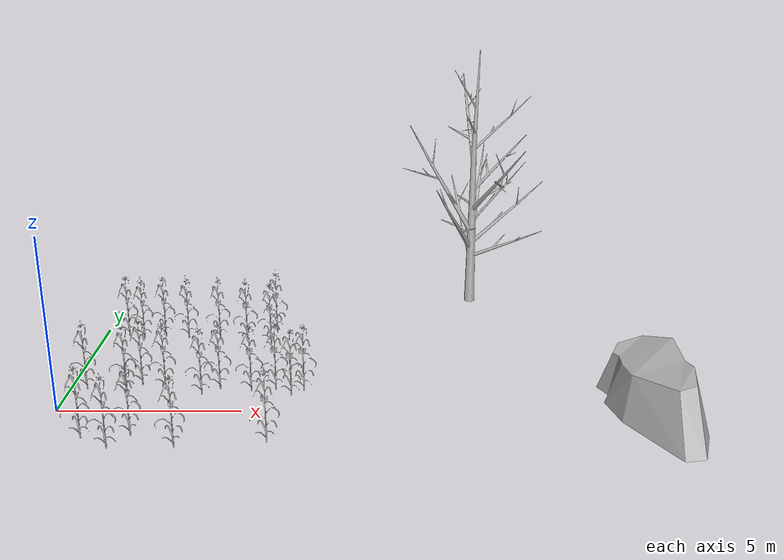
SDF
<sdf version="1.6">
 <world name="default">
  <model name="corn_stalk2_clone_29">
   <static>1</static>
   <link name="corn_stalk2_link">
    <collision name="collision">
     <geometry><mesh><scale>1 1 1</scale><uri>model://corn_type2/meshes/model.stl</uri></mesh></geometry>
    </collision>
    <visual name="corn_stalk2_visual">
     <geometry><mesh><uri>model://corn_type2/meshes/model.stl</uri><scale>1 1 1</scale></mesh></geometry>
     <material>
      <script>
       <uri>model://corn_type2/materials/scripts</uri>
       <uri>model://corn_type2/materials/textures</uri>
       <name>corn_type2/Diffuse</name>
      </script>
     </material>
    </visual>
   </link>
   <pose>1.88138 -1.77757 0 0 -0 0</pose>
  </model>
  <model name="corn_stalk2_clone_43">
   <static>1</static>
   <link name="corn_stalk2_link">
    <collision name="collision">
     <geometry><mesh><scale>1 1 1</scale><uri>model://corn_type2/meshes/model.stl</uri></mesh></geometry>
    </collision>
    <visual name="corn_stalk2_visual">
     <geometry><mesh><uri>model://corn_type2/meshes/model.stl</uri><scale>1 1 1</scale></mesh></geometry>
     <material>
      <script>
       <uri>model://corn_type2/materials/scripts</uri>
       <uri>model://corn_type2/materials/textures</uri>
       <name>corn_type2/Diffuse</name>
      </script>
     </material>
    </visual>
   </link>
   <pose>0.456007 1.19719 0 0 -0 0</pose>
  </model>
  <model name="corn_stalk2_clone_44">
   <static>1</static>
   <link name="corn_stalk2_link">
    <collision name="collision">
     <geometry><mesh><scale>1 1 1</scale><uri>model://corn_type2/meshes/model.stl</uri></mesh></geometry>
    </collision>
    <visual name="corn_stalk2_visual">
     <geometry><mesh><uri>model://corn_type2/meshes/model.stl</uri><scale>1 1 1</scale></mesh></geometry>
     <material>
      <script>
       <uri>model://corn_type2/materials/scripts</uri>
       <uri>model://corn_type2/materials/textures</uri>
       <name>corn_type2/Diffuse</name>
      </script>
     </material>
    </visual>
   </link>
   <pose>1.60118 1.09896 0 0 -0 0</pose>
  </model>
  <model name="corn_stalk2_clone_45">
   <static>1</static>
   <link name="corn_stalk2_link">
    <collision name="collision">
     <geometry><mesh><scale>1 1 1</scale><uri>model://corn_type2/meshes/model.stl</uri></mesh></geometry>
    </collision>
    <visual name="corn_stalk2_visual">
     <geometry><mesh><uri>model://corn_type2/meshes/model.stl</uri><scale>1 1 1</scale></mesh></geometry>
     <material>
      <script>
       <uri>model://corn_type2/materials/scripts</uri>
       <uri>model://corn_type2/materials/textures</uri>
       <name>corn_type2/Diffuse</name>
      </script>
     </material>
    </visual>
   </link>
   <pose>2.67417 1.23244 0 0 -0 0</pose>
  </model>
  <model name="corn_stalk2_clone_46">
   <static>1</static>
   <link name="corn_stalk2_link">
    <collision name="collision">
     <geometry><mesh><scale>1 1 1</scale><uri>model://corn_type2/meshes/model.stl</uri></mesh></geometry>
    </collision>
    <visual name="corn_stalk2_visual">
     <geometry><mesh><uri>model://corn_type2/meshes/model.stl</uri><scale>1 1 1</scale></mesh></geometry>
     <material>
      <script>
       <uri>model://corn_type2/materials/scripts</uri>
       <uri>model://corn_type2/materials/textures</uri>
       <name>corn_type2/Diffuse</name>
      </script>
     </material>
    </visual>
   </link>
   <pose>3.75689 0.914168 0 0 -0 0</pose>
  </model>
  <model name="corn_stalk2_clone_47">
   <static>1</static>
   <link name="corn_stalk2_link">
    <collision name="collision">
     <geometry><mesh><scale>1 1 1</scale><uri>model://corn_type2/meshes/model.stl</uri></mesh></geometry>
    </collision>
    <visual name="corn_stalk2_visual">
     <geometry><mesh><uri>model://corn_type2/meshes/model.stl</uri><scale>1 1 1</scale></mesh></geometry>
     <material>
      <script>
       <uri>model://corn_type2/materials/scripts</uri>
       <uri>model://corn_type2/materials/textures</uri>
       <name>corn_type2/Diffuse</name>
      </script>
     </material>
    </visual>
   </link>
   <pose>4.22166 1.24005 0 0 -0 0</pose>
  </model>
  <model name="corn_stalk2_clone_48">
   <static>1</static>
   <link name="corn_stalk2_link">
    <collision name="collision">
     <geometry><mesh><scale>1 1 1</scale><uri>model://corn_type2/meshes/model.stl</uri></mesh></geometry>
    </collision>
    <visual name="corn_stalk2_visual">
     <geometry><mesh><uri>model://corn_type2/meshes/model.stl</uri><scale>1 1 1</scale></mesh></geometry>
     <material>
      <script>
       <uri>model://corn_type2/materials/scripts</uri>
       <uri>model://corn_type2/materials/textures</uri>
       <name>corn_type2/Diffuse</name>
      </script>
     </material>
    </visual>
   </link>
   <pose>5.12082 1.11099 0 0 -0 0</pose>
  </model>
  <model name="corn_stalk2_clone_49">
   <static>1</static>
   <link name="corn_stalk2_link">
    <collision name="collision">
     <geometry><mesh><scale>1 1 1</scale><uri>model://corn_type2/meshes/model.stl</uri></mesh></geometry>
    </collision>
    <visual name="corn_stalk2_visual">
     <geometry><mesh><uri>model://corn_type2/meshes/model.stl</uri><scale>1 1 1</scale></mesh></geometry>
     <material>
      <script>
       <uri>model://corn_type2/materials/scripts</uri>
       <uri>model://corn_type2/materials/textures</uri>
       <name>corn_type2/Diffuse</name>
      </script>
     </material>
    </visual>
   </link>
   <pose>5.80337 1.20954 0 0 -0 0</pose>
  </model>
  <model name="corn_stalk2_clone_50">
   <static>1</static>
   <link name="corn_stalk2_link">
    <collision name="collision">
     <geometry><mesh><scale>1 1 1</scale><uri>model://corn_type2/meshes/model.stl</uri></mesh></geometry>
    </collision>
    <visual name="corn_stalk2_visual">
     <geometry><mesh><uri>model://corn_type2/meshes/model.stl</uri><scale>1 1 1</scale></mesh></geometry>
     <material>
      <script>
       <uri>model://corn_type2/materials/scripts</uri>
       <uri>model://corn_type2/materials/textures</uri>
       <name>corn_type2/Diffuse</name>
      </script>
     </material>
    </visual>
   </link>
   <pose>5.31763 4.10486 0 0 -0 0</pose>
  </model>
  <model name="corn_stalk2_clone_51">
   <static>1</static>
   <link name="corn_stalk2_link">
    <collision name="collision">
     <geometry><mesh><scale>1 1 1</scale><uri>model://corn_type2/meshes/model.stl</uri></mesh></geometry>
    </collision>
    <visual name="corn_stalk2_visual">
     <geometry><mesh><uri>model://corn_type2/meshes/model.stl</uri><scale>1 1 1</scale></mesh></geometry>
     <material>
      <script>
       <uri>model://corn_type2/materials/scripts</uri>
       <uri>model://corn_type2/materials/textures</uri>
       <name>corn_type2/Diffuse</name>
      </script>
     </material>
    </visual>
   </link>
   <pose>4.54413 4.29558 0 0 -0 0</pose>
  </model>
  <model name="corn_stalk2_clone_52">
   <static>1</static>
   <link name="corn_stalk2_link">
    <collision name="collision">
     <geometry><mesh><scale>1 1 1</scale><uri>model://corn_type2/meshes/model.stl</uri></mesh></geometry>
    </collision>
    <visual name="corn_stalk2_visual">
     <geometry><mesh><uri>model://corn_type2/meshes/model.stl</uri><scale>1 1 1</scale></mesh></geometry>
     <material>
      <script>
       <uri>model://corn_type2/materials/scripts</uri>
       <uri>model://corn_type2/materials/textures</uri>
       <name>corn_type2/Diffuse</name>
      </script>
     </material>
    </visual>
   </link>
   <pose>3.66093 4.44418 0 0 -0 0</pose>
  </model>
  <model name="corn_stalk2_clone_53">
   <static>1</static>
   <link name="corn_stalk2_link">
    <collision name="collision">
     <geometry><mesh><scale>1 1 1</scale><uri>model://corn_type2/meshes/model.stl</uri></mesh></geometry>
    </collision>
    <visual name="corn_stalk2_visual">
     <geometry><mesh><uri>model://corn_type2/meshes/model.stl</uri><scale>1 1 1</scale></mesh></geometry>
     <material>
      <script>
       <uri>model://corn_type2/materials/scripts</uri>
       <uri>model://corn_type2/materials/textures</uri>
       <name>corn_type2/Diffuse</name>
      </script>
     </material>
    </visual>
   </link>
   <pose>2.65247 4.50274 0 0 -0 0</pose>
  </model>
  <model name="corn_stalk2_clone_54">
   <static>1</static>
   <link name="corn_stalk2_link">
    <collision name="collision">
     <geometry><mesh><scale>1 1 1</scale><uri>model://corn_type2/meshes/model.stl</uri></mesh></geometry>
    </collision>
    <visual name="corn_stalk2_visual">
     <geometry><mesh><uri>model://corn_type2/meshes/model.stl</uri><scale>1 1 1</scale></mesh></geometry>
     <material>
      <script>
       <uri>model://corn_type2/materials/scripts</uri>
       <uri>model://corn_type2/materials/textures</uri>
       <name>corn_type2/Diffuse</name>
      </script>
     </material>
    </visual>
   </link>
   <pose>1.90074 4.57523 0 0 -0 0</pose>
  </model>
  <model name="corn_stalk2_clone_55">
   <static>1</static>
   <link name="corn_stalk2_link">
    <collision name="collision">
     <geometry><mesh><scale>1 1 1</scale><uri>model://corn_type2/meshes/model.stl</uri></mesh></geometry>
    </collision>
    <visual name="corn_stalk2_visual">
     <geometry><mesh><uri>model://corn_type2/meshes/model.stl</uri><scale>1 1 1</scale></mesh></geometry>
     <material>
      <script>
       <uri>model://corn_type2/materials/scripts</uri>
       <uri>model://corn_type2/materials/textures</uri>
       <name>corn_type2/Diffuse</name>
      </script>
     </material>
    </visual>
   </link>
   <pose>0.723936 4.62767 0 0 -0 0</pose>
  </model>
  <model name="tree_type3_1">
   <static>1</static>
   <link name="link">
    <collision name="collision"><geometry><box><size>0.3 0.3 10</size></box></geometry></collision>
    <visual name="corn_stalk4_visual">
     <geometry><mesh><uri>model://tree_type3/meshes/model.stl</uri><scale>1 1 1</scale></mesh></geometry>
     <material>
      <script>
       <uri>model://tree_type3/materials/scripts</uri>
       <uri>model://tree_type3/materials/textures</uri>
       <name>tree_type3/Diffuse</name>
      </script>
     </material>
    </visual>
   </link>
   <pose>11.8736 7.54169 0 0 -0 0</pose>
  </model>
  <model name="rock_type1_0">
   <static>1</static>
   <link name="link">
    <collision name="collision">
     <geometry><mesh><uri>model://rock_type1/meshes/model.dae</uri></mesh></geometry>
    </collision>
    <visual name="visual">
     <geometry><mesh><uri>model://rock_type1/meshes/model.dae</uri></mesh></geometry>
    </visual>
   </link>
   <pose>14.2338 1.44343 0 0 0 -1.11785</pose>
  </model>
  <model name="corn_stalk2_0_clone_5">
   <static>1</static>
   <link name="corn_stalk2_link">
    <collision name="collision">
     <geometry><mesh><scale>1 1 1</scale><uri>model://corn_type2/meshes/model.stl</uri></mesh></geometry>
    </collision>
    <visual name="corn_stalk2_visual">
     <geometry><mesh><uri>model://corn_type2/meshes/model.stl</uri><scale>1 1 1</scale></mesh></geometry>
     <material>
      <script>
       <uri>model://corn_type2/materials/scripts</uri>
       <uri>model://corn_type2/materials/textures</uri>
       <name>corn_type2/Diffuse</name>
      </script>
     </material>
    </visual>
   </link>
   <pose>1.96531 1.44545 0 0 -0 0</pose>
  </model>
  <model name="corn_stalk2_0_clone_6">
   <static>1</static>
   <link name="corn_stalk2_link">
    <collision name="collision">
     <geometry><mesh><scale>1 1 1</scale><uri>model://corn_type2/meshes/model.stl</uri></mesh></geometry>
    </collision>
    <visual name="corn_stalk2_visual">
     <geometry><mesh><uri>model://corn_type2/meshes/model.stl</uri><scale>1 1 1</scale></mesh></geometry>
     <material>
      <script>
       <uri>model://corn_type2/materials/scripts</uri>
       <uri>model://corn_type2/materials/textures</uri>
       <name>corn_type2/Diffuse</name>
      </script>
     </material>
    </visual>
   </link>
   <pose>6.60445 1.15174 0 0 -0 0</pose>
  </model>
  <model name="corn_stalk2_0_clone_7">
   <static>1</static>
   <link name="corn_stalk2_link">
    <collision name="collision">
     <geometry><mesh><scale>1 1 1</scale><uri>model://corn_type2/meshes/model.stl</uri></mesh></geometry>
    </collision>
    <visual name="corn_stalk2_visual">
     <geometry><mesh><uri>model://corn_type2/meshes/model.stl</uri><scale>1 1 1</scale></mesh></geometry>
     <material>
      <script>
       <uri>model://corn_type2/materials/scripts</uri>
       <uri>model://corn_type2/materials/textures</uri>
       <name>corn_type2/Diffuse</name>
      </script>
     </material>
    </visual>
   </link>
   <pose>5.87408 -1.4831 0 0 -0 0</pose>
  </model>
  <model name="corn_stalk2_0_clone_8">
   <static>1</static>
   <link name="corn_stalk2_link">
    <collision name="collision">
     <geometry><mesh><scale>1 1 1</scale><uri>model://corn_type2/meshes/model.stl</uri></mesh></geometry>
    </collision>
    <visual name="corn_stalk2_visual">
     <geometry><mesh><uri>model://corn_type2/meshes/model.stl</uri><scale>1 1 1</scale></mesh></geometry>
     <material>
      <script>
       <uri>model://corn_type2/materials/scripts</uri>
       <uri>model://corn_type2/materials/textures</uri>
       <name>corn_type2/Diffuse</name>
      </script>
     </material>
    </visual>
   </link>
   <pose>3.56933 -1.74234 0 0 -0 0</pose>
  </model>
  <model name="corn_stalk2_0_clone_9">
   <static>1</static>
   <link name="corn_stalk2_link">
    <collision name="collision">
     <geometry><mesh><scale>1 1 1</scale><uri>model://corn_type2/meshes/model.stl</uri></mesh></geometry>
    </collision>
    <visual name="corn_stalk2_visual">
     <geometry><mesh><uri>model://corn_type2/meshes/model.stl</uri><scale>1 1 1</scale></mesh></geometry>
     <material>
      <script>
       <uri>model://corn_type2/materials/scripts</uri>
       <uri>model://corn_type2/materials/textures</uri>
       <name>corn_type2/Diffuse</name>
      </script>
     </material>
    </visual>
   </link>
   <pose>2.33429 -1.20562 0 0 -0 0</pose>
  </model>
  <model name="corn_stalk2_0_clone_10">
   <static>1</static>
   <link name="corn_stalk2_link">
    <collision name="collision">
     <geometry><mesh><scale>1 1 1</scale><uri>model://corn_type2/meshes/model.stl</uri></mesh></geometry>
    </collision>
    <visual name="corn_stalk2_visual">
     <geometry><mesh><uri>model://corn_type2/meshes/model.stl</uri><scale>1 1 1</scale></mesh></geometry>
     <material>
      <script>
       <uri>model://corn_type2/materials/scripts</uri>
       <uri>model://corn_type2/materials/textures</uri>
       <name>corn_type2/Diffuse</name>
      </script>
     </material>
    </visual>
   </link>
   <pose>1.07911 -1.31527 0 0 -0 0</pose>
  </model>
  <model name="corn_stalk2_0_clone_19">
   <static>1</static>
   <link name="corn_stalk2_link">
    <collision name="collision">
     <geometry><mesh><scale>1 1 1</scale><uri>model://corn_type2/meshes/model.stl</uri></mesh></geometry>
    </collision>
    <visual name="corn_stalk2_visual">
     <geometry><mesh><uri>model://corn_type2/meshes/model.stl</uri><scale>1 1 1</scale></mesh></geometry>
     <material>
      <script>
       <uri>model://corn_type2/materials/scripts</uri>
       <uri>model://corn_type2/materials/textures</uri>
       <name>corn_type2/Diffuse</name>
      </script>
     </material>
    </visual>
   </link>
   <pose>1.25885 4.40624 0 0 -0 0</pose>
  </model>
  <model name="corn_stalk2_0_clone_20">
   <static>1</static>
   <link name="corn_stalk2_link">
    <collision name="collision">
     <geometry><mesh><scale>1 1 1</scale><uri>model://corn_type2/meshes/model.stl</uri></mesh></geometry>
    </collision>
    <visual name="corn_stalk2_visual">
     <geometry><mesh><uri>model://corn_type2/meshes/model.stl</uri><scale>1 1 1</scale></mesh></geometry>
     <material>
      <script>
       <uri>model://corn_type2/materials/scripts</uri>
       <uri>model://corn_type2/materials/textures</uri>
       <name>corn_type2/Diffuse</name>
      </script>
     </material>
    </visual>
   </link>
   <pose>5.40588 5.01235 0 0 -0 0</pose>
  </model>
  <model name="corn_stalk2_0_clone_21">
   <static>1</static>
   <link name="corn_stalk2_link">
    <collision name="collision">
     <geometry><mesh><scale>1 1 1</scale><uri>model://corn_type2/meshes/model.stl</uri></mesh></geometry>
    </collision>
    <visual name="corn_stalk2_visual">
     <geometry><mesh><uri>model://corn_type2/meshes/model.stl</uri><scale>1 1 1</scale></mesh></geometry>
     <material>
      <script>
       <uri>model://corn_type2/materials/scripts</uri>
       <uri>model://corn_type2/materials/textures</uri>
       <name>corn_type2/Diffuse</name>
      </script>
     </material>
    </visual>
   </link>
   <pose>6.271 0.870438 0 0 -0 0</pose>
  </model>
 </world>
</sdf>
